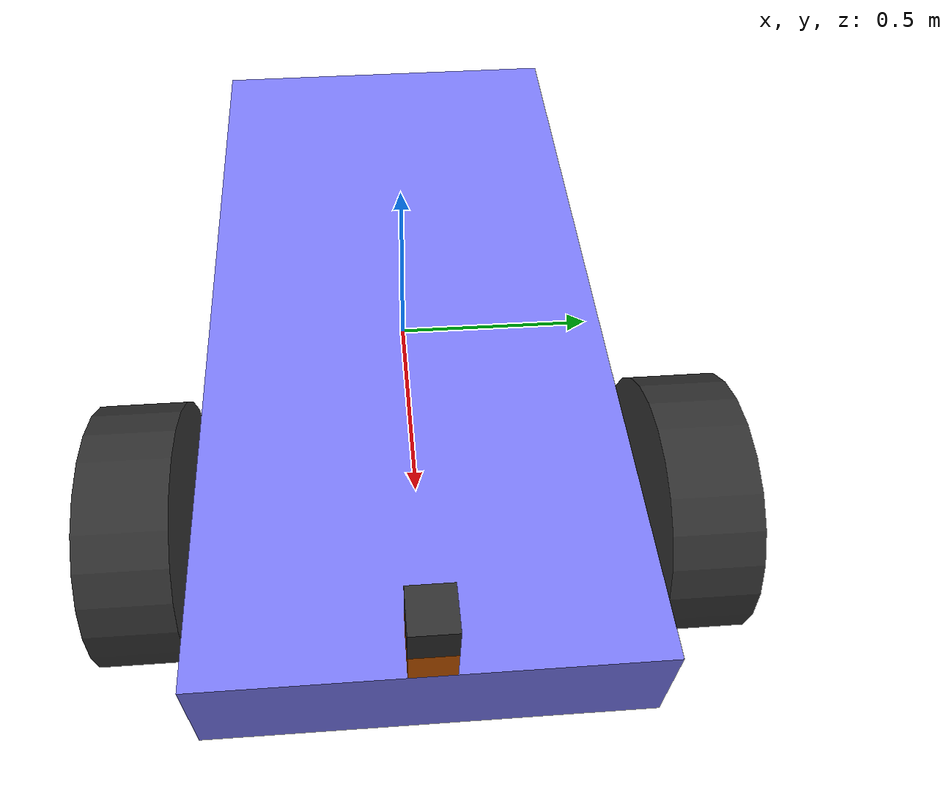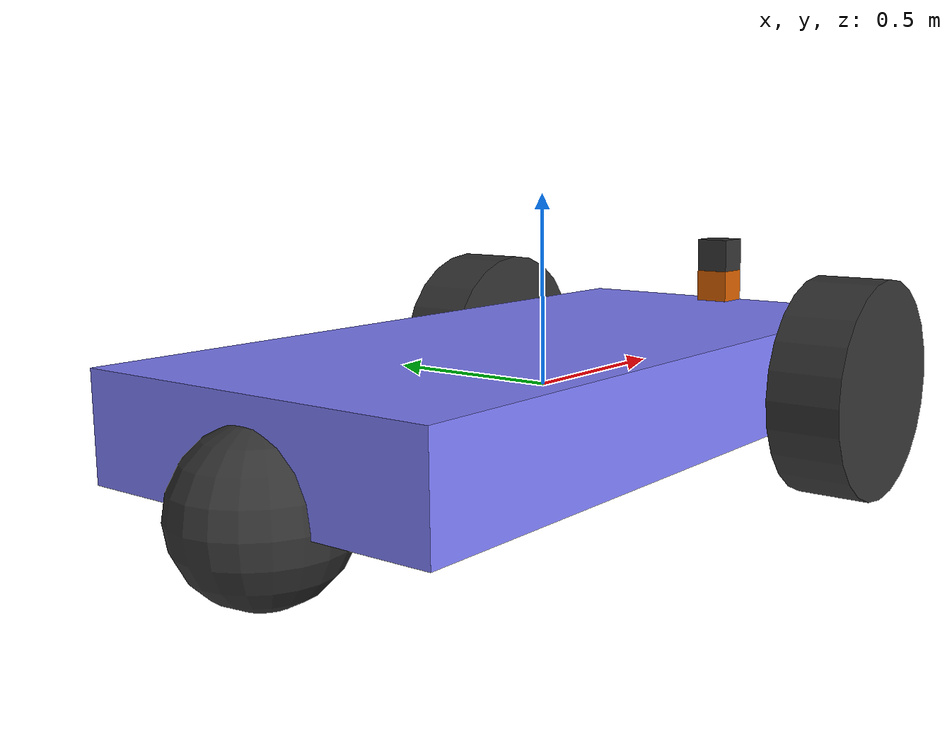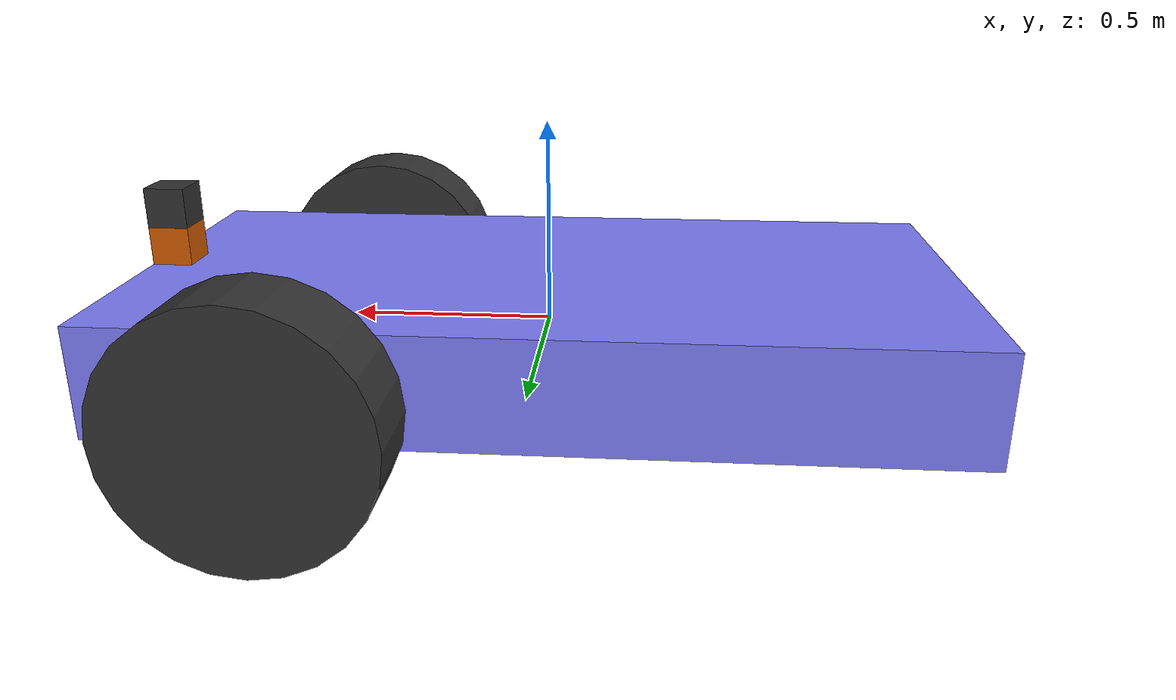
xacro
<?xml version="1.0"?>
<robot name="diff_drive" xmlns:xacro="http://ros.org/wiki/xacro">

    <!-- External Arguments -->
    <xacro:arg name="robot_model_name" default="diff_drive" />

    <!-- Properties -->
    <xacro:property name="chassis_length" value="2.01142" />
    <xacro:property name="chassis_width" value="1" />
    <xacro:property name="chassis_height" value="0.268726" />
    <xacro:property name="chassis_mass" value="1.14395" />

    <xacro:property name="wheel_radius" value="0.3" />
    <xacro:property name="wheel_length" value="0.2" />
    <xacro:property name="wheel_mass" value="2" />
    <xacro:property name="wheel_y_offset" value="0.625029" />
    <xacro:property name="wheel_x_offset" value="0.554283" />
    <xacro:property name="wheel_z_offset" value="-0.025" />

    <xacro:property name="caster_radius" value="0.2" />
    <xacro:property name="caster_mass" value="1" />
    <xacro:property name="caster_x_offset" value="-0.957138" />
    <xacro:property name="caster_z_offset" value="-0.125" />

    <xacro:property name="lidar_size" value="0.1" />
    <xacro:property name="lidar_mass" value="0.1" />
    <xacro:property name="lidar_z_offset" value="0.18" />

    <!-- Wheel Macro -->
    <xacro:macro name="wheel" params="name side">
        <link name="${name}_wheel">
            <inertial>
                <mass value="${wheel_mass}" />
                <inertia ixx="0.145833" ixy="0" ixz="0" iyy="0.145833" iyz="0" izz="0.125" />
            </inertial>
            <visual>
                <origin xyz="0 0 0" rpy="0 0 0" />
                <geometry>
                    <cylinder radius="${wheel_radius}" length="${wheel_length}" />
                </geometry>
                <material name="dark_gray">
                    <color rgba="0.2 0.2 0.2 1" />
                </material>
            </visual>
            <collision name="wheel_collision">
                <origin xyz="0 0 0" rpy="0 0 0" />
                <geometry>
                    <cylinder radius="${wheel_radius}" length="${wheel_length}" />
                </geometry>
            </collision>
        </link>

        <joint name="${name}_wheel_joint" type="revolute">
            <parent link="chassis" />
            <child link="${name}_wheel" />
            <origin xyz="${wheel_x_offset} ${side * wheel_y_offset} ${wheel_z_offset}"
                rpy="-1.5707 0 0" />
            <axis xyz="0 0 1" />
            <limit lower="-1.79769e+308" upper="1.79769e+308" effort="1000.0" velocity="50.0" />
        </joint>

    </xacro:macro>

    <link name="base_link"></link>

    <!-- Chassis -->
    <link name="chassis">
        <inertial>
            <mass value="${chassis_mass}" />
            <inertia ixx="0.126164" ixy="0" ixz="0" iyy="0.416519" iyz="0" izz="0.481014" />
        </inertial>
        <visual>
            <origin xyz="0 0 0" rpy="0 0 0" />
            <geometry>
                <box size="${chassis_length} ${chassis_width} ${chassis_height}" />
            </geometry>
            <material name="blue">
                <color rgba="0.5 0.5 1.0 1" />
            </material>
        </visual>
        <collision>
            <origin xyz="0 0 0" rpy="0 0 0" />
            <geometry>
                <box size="${chassis_length} ${chassis_width} ${chassis_height}" />
            </geometry>
        </collision>
    </link>

    <joint name="chassis_joint" type="fixed">
        <parent link="base_link" />
        <child link="chassis" />
        <origin xyz="0 0 0" rpy="0 0 0" />
    </joint>

    <!-- Instantiate wheels -->
    <xacro:wheel name="left" side="1" />
    <xacro:wheel name="right" side="-1" />

    <!-- Caster -->
    <link name="caster">
        <inertial>
            <mass value="${caster_mass}" />
            <inertia ixx="0.1" ixy="0" ixz="0" iyy="0.1" iyz="0" izz="0.1" />
        </inertial>
        <visual>
            <origin xyz="0 0 0" rpy="0 0 0" />
            <geometry>
                <sphere radius="${caster_radius}" />
            </geometry>
            <material name="dark_gray">
                <color rgba="0.2 0.2 0.2 1" />
            </material>
        </visual>
        <collision>
            <origin xyz="0 0 0" rpy="0 0 0" />
            <geometry>
                <sphere radius="${caster_radius}" />
            </geometry>
        </collision>
    </link>

    <joint name="caster_wheel" type="fixed">
        <parent link="chassis" />
        <child link="caster" />
        <origin xyz="${caster_x_offset} 0 ${caster_z_offset}" rpy="0 0 0" />
    </joint>

    <!-- Lidar -->
    <link name="lidar_link">
        <inertial>
            <mass value="${lidar_mass}" />
            <inertia ixx="0.000166667" ixy="0" ixz="0" iyy="0.000166667" iyz="0" izz="0.000166667" />
        </inertial>
        <visual>
            <origin xyz="0 0 0" rpy="0 0 0" />
            <geometry>
                <box size="${lidar_size} ${lidar_size} ${lidar_size}" />
            </geometry>
        </visual>
        <collision>
            <origin xyz="0 0 0" rpy="0 0 0" />
            <geometry>
                <box size="${lidar_size} ${lidar_size} ${lidar_size}" />
            </geometry>
        </collision>
    </link>

    <joint name="lidar_joint" type="fixed">
        <parent link="chassis" />
        <child link="lidar_link" />
        <origin xyz="${chassis_length/2 - lidar_size / 2} 0 ${lidar_z_offset}" rpy="0 0 0" />
    </joint>

    <link name="camera_link">
        <inertial>
            <mass value="${lidar_mass}" />
            <inertia ixx="0.000166667" ixy="0" ixz="0" iyy="0.000166667" iyz="0" izz="0.000166667" />
        </inertial>
        <visual>
            <origin xyz="0 0 0" rpy="0 0 0" />
            <geometry>
                <box size="${lidar_size} ${lidar_size} ${lidar_size}" />
            </geometry>
            <material name="dark_gray">
                <color rgba="0.2 0.2 0.2 1" />
            </material>
        </visual>
        <collision>
            <origin xyz="0 0 0" rpy="0 0 0" />
            <geometry>
                <box size="${lidar_size} ${lidar_size} ${lidar_size}" />
            </geometry>
        </collision>
    </link>

    <joint name="camera_joint" type="fixed">
        <parent link="lidar_link" />
        <child link="camera_link" />
        <origin xyz="0 0 ${lidar_size}" rpy="0 0 0" />
    </joint>

    <!-- Gazebo Plugins -->
    <gazebo>
        <plugin
            filename="gz-sim-diff-drive-system"
            name="gz::sim::systems::DiffDrive">
            <left_joint>left_wheel_joint</left_joint>
            <right_joint>right_wheel_joint</right_joint>
            <wheel_separation>1.25</wheel_separation>
            <wheel_radius>${wheel_radius}</wheel_radius>
            <odom_publish_frequency>1</odom_publish_frequency>
            <odom_topic>model/$(arg robot_model_name)/diffdrive_plugin/odom</odom_topic>
            <max_linear_acceleration>1</max_linear_acceleration>
            <min_linear_acceleration>-1</min_linear_acceleration>
            <max_angular_acceleration>2</max_angular_acceleration>
            <min_angular_acceleration>-2</min_angular_acceleration>
            <max_linear_velocity>20</max_linear_velocity>
            <min_linear_velocity>-20</min_linear_velocity>
            <max_angular_velocity>1</max_angular_velocity>
            <min_angular_velocity>-1</min_angular_velocity>
        </plugin>

        <plugin
            filename="gz-sim-joint-state-publisher-system"
            name="gz::sim::systems::JointStatePublisher">
        </plugin>

        <plugin
            filename="gz-sim-odometry-publisher-system"
            name="gz::sim::systems::OdometryPublisher">
            <odom_frame>$(arg robot_model_name)/odom</odom_frame>
            <robot_base_frame>$(arg robot_model_name)/base_link</robot_base_frame>
            <odom_publish_frequency>20</odom_publish_frequency>
        </plugin>
    </gazebo>

    <!-- Gazebo Sensor for Lidar -->
    <gazebo reference="lidar_link">
        <sensor name="my_lidar" type="gpu_lidar">
            <pose>0 0 0 0 0 0</pose>
            <topic>/model/$(arg robot_model_name)/scan</topic>
            <gz_frame_id>$(arg robot_model_name)/lidar_link</gz_frame_id>
            <update_rate>10</update_rate>
            <lidar>
                <scan>
                    <horizontal>
                        <samples>640</samples>
                        <resolution>1</resolution>
                        <min_angle>-1.396263</min_angle>
                        <max_angle>1.396263</max_angle>
                    </horizontal>
                    <vertical>
                        <samples>1</samples>
                        <resolution>1</resolution>
                        <min_angle>0.0</min_angle>
                        <max_angle>0.0</max_angle>
                    </vertical>
                </scan>
                <range>
                    <min>0.08</min>
                    <max>10.0</max>
                    <resolution>0.01</resolution>
                </range>
            </lidar>
            <always_on>1</always_on>
            <visualize>true</visualize>
        </sensor>
    </gazebo>

    <gazebo reference="camera_link">
        <sensor type="camera" name="top_sensor">
            <camera>
                <horizontal_fov>1.047</horizontal_fov>
                <image>
                    <width>320</width>
                    <height>240</height>
                </image>
                <clip>
                    <near>0.1</near>
                    <far>50</far>
                </clip>
            </camera>
            <always_on>1</always_on>
            <update_rate>30</update_rate>
            <visualize>true</visualize>
        </sensor>
    </gazebo>

</robot>
